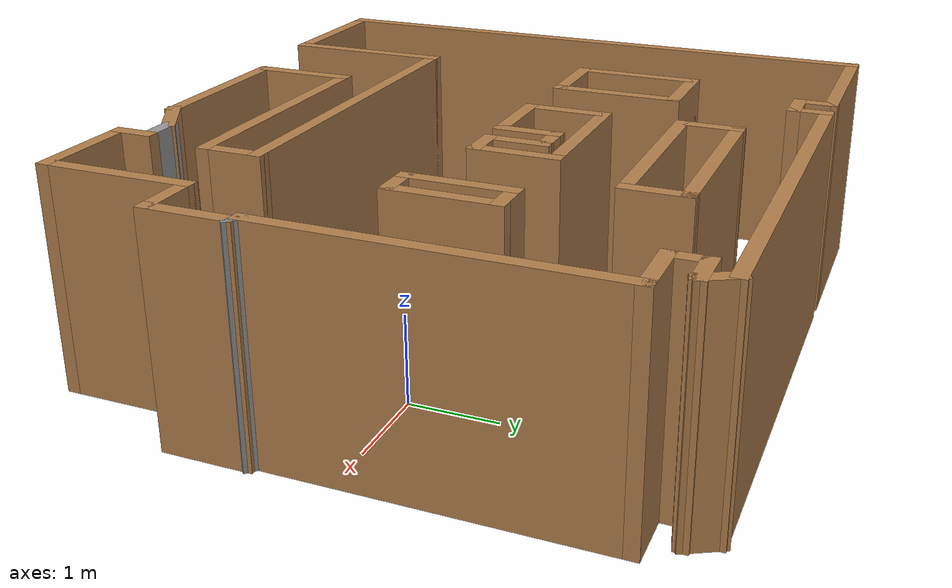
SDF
<?xml version='1.0'?>
<sdf version='1.6'>
  <model name='map_6'>
    <pose frame=''>-2.0173 0.033072 0 0 -0 0</pose>
    <link name='Wall_0'>
      <collision name='Wall_0_Collision'>
        <geometry>
          <box>
            <size>4.75 0.15 2.5</size>
          </box>
        </geometry>
        <pose frame=''>0 0 1.25 0 -0 0</pose>
      </collision>
      <visual name='Wall_0_Visual'>
        <pose frame=''>0 0 1.25 0 -0 0</pose>
        <geometry>
          <box>
            <size>4.75 0.15 2.5</size>
          </box>
        </geometry>
        <material>
          <script>
            <uri>file://media/materials/scripts/gazebo.material</uri>
            <name>Gazebo/Wood</name>
          </script>
          <ambient>1 1 1 1</ambient>
        </material>
        <meta>
          <layer>0</layer>
        </meta>
      </visual>
      <pose frame=''>0.84966 3.41177 0 0 -0 3.14159</pose>
    </link>
    <link name='Wall_10'>
      <collision name='Wall_10_Collision'>
        <geometry>
          <box>
            <size>1.75 0.15 2.5</size>
          </box>
        </geometry>
        <pose frame=''>0 0 1.25 0 -0 0</pose>
      </collision>
      <visual name='Wall_10_Visual'>
        <pose frame=''>0 0 1.25 0 -0 0</pose>
        <geometry>
          <box>
            <size>1.75 0.15 2.5</size>
          </box>
        </geometry>
        <material>
          <script>
            <uri>file://media/materials/scripts/gazebo.material</uri>
            <name>Gazebo/Wood</name>
          </script>
          <ambient>1 1 1 1</ambient>
        </material>
        <meta>
          <layer>0</layer>
        </meta>
      </visual>
      <pose frame=''>-2.85034 -3.43823 0 0 -0 0</pose>
    </link>
    <link name='Wall_11'>
      <collision name='Wall_11_Collision'>
        <geometry>
          <box>
            <size>2 0.15 2.5</size>
          </box>
        </geometry>
        <pose frame=''>0 0 1.25 0 -0 0</pose>
      </collision>
      <visual name='Wall_11_Visual'>
        <pose frame=''>0 0 1.25 0 -0 0</pose>
        <geometry>
          <box>
            <size>2 0.15 2.5</size>
          </box>
        </geometry>
        <material>
          <script>
            <uri>file://media/materials/scripts/gazebo.material</uri>
            <name>Gazebo/Wood</name>
          </script>
          <ambient>1 1 1 1</ambient>
        </material>
        <meta>
          <layer>0</layer>
        </meta>
      </visual>
      <pose frame=''>-2.05034 -2.51323 0 0 -0 1.5708</pose>
    </link>
    <link name='Wall_12'>
      <collision name='Wall_12_Collision'>
        <geometry>
          <box>
            <size>4.25 0.15 2.5</size>
          </box>
        </geometry>
        <pose frame=''>0 0 1.25 0 -0 0</pose>
      </collision>
      <visual name='Wall_12_Visual'>
        <pose frame=''>0 0 1.25 0 -0 0</pose>
        <geometry>
          <box>
            <size>4.25 0.15 2.5</size>
          </box>
        </geometry>
        <material>
          <script>
            <uri>file://media/materials/scripts/gazebo.material</uri>
            <name>Gazebo/Wood</name>
          </script>
          <ambient>1 1 1 1</ambient>
        </material>
        <meta>
          <layer>0</layer>
        </meta>
      </visual>
      <pose frame=''>-0.00034 -1.58823 0 0 -0 0</pose>
    </link>
    <link name='Wall_13'>
      <collision name='Wall_13_Collision'>
        <geometry>
          <box>
            <size>0.75 0.15 2.5</size>
          </box>
        </geometry>
        <pose frame=''>0 0 1.25 0 -0 0</pose>
      </collision>
      <visual name='Wall_13_Visual'>
        <pose frame=''>0 0 1.25 0 -0 0</pose>
        <geometry>
          <box>
            <size>0.75 0.15 2.5</size>
          </box>
        </geometry>
        <material>
          <script>
            <uri>file://media/materials/scripts/gazebo.material</uri>
            <name>Gazebo/Wood</name>
          </script>
          <ambient>1 1 1 1</ambient>
        </material>
        <meta>
          <layer>0</layer>
        </meta>
      </visual>
      <pose frame=''>2.04966 -1.88823 0 0 -0 -1.5708</pose>
    </link>
    <link name='Wall_14'>
      <collision name='Wall_14_Collision'>
        <geometry>
          <box>
            <size>3 0.15 2.5</size>
          </box>
        </geometry>
        <pose frame=''>0 0 1.25 0 -0 0</pose>
      </collision>
      <visual name='Wall_14_Visual'>
        <pose frame=''>0 0 1.25 0 -0 0</pose>
        <geometry>
          <box>
            <size>3 0.15 2.5</size>
          </box>
        </geometry>
        <material>
          <script>
            <uri>file://media/materials/scripts/gazebo.material</uri>
            <name>Gazebo/Wood</name>
          </script>
          <ambient>1 1 1 1</ambient>
        </material>
        <meta>
          <layer>0</layer>
        </meta>
      </visual>
      <pose frame=''>0.62466 -2.18823 0 0 -0 3.14159</pose>
    </link>
    <link name='Wall_15'>
      <collision name='Wall_15_Collision'>
        <geometry>
          <box>
            <size>1.25 0.15 2.5</size>
          </box>
        </geometry>
        <pose frame=''>0 0 1.25 0 -0 0</pose>
      </collision>
      <visual name='Wall_15_Visual'>
        <pose frame=''>0 0 1.25 0 -0 0</pose>
        <geometry>
          <box>
            <size>1.25 0.15 2.5</size>
          </box>
        </geometry>
        <material>
          <script>
            <uri>file://media/materials/scripts/gazebo.material</uri>
            <name>Gazebo/Wood</name>
          </script>
          <ambient>1 1 1 1</ambient>
        </material>
        <meta>
          <layer>0</layer>
        </meta>
      </visual>
      <pose frame=''>-0.80034 -2.73823 0 0 -0 -1.5708</pose>
    </link>
    <link name='Wall_16'>
      <collision name='Wall_16_Collision'>
        <geometry>
          <box>
            <size>2 0.15 2.5</size>
          </box>
        </geometry>
        <pose frame=''>0 0 1.25 0 -0 0</pose>
      </collision>
      <visual name='Wall_16_Visual'>
        <pose frame=''>0 0 1.25 0 -0 0</pose>
        <geometry>
          <box>
            <size>2 0.15 2.5</size>
          </box>
        </geometry>
        <material>
          <script>
            <uri>file://media/materials/scripts/gazebo.material</uri>
            <name>Gazebo/Wood</name>
          </script>
          <ambient>1 1 1 1</ambient>
        </material>
        <meta>
          <layer>0</layer>
        </meta>
      </visual>
      <pose frame=''>0.12466 -3.28823 0 0 -0 0</pose>
    </link>
    <link name='Wall_17'>
      <collision name='Wall_17_Collision'>
        <geometry>
          <box>
            <size>0.75 0.15 2.5</size>
          </box>
        </geometry>
        <pose frame=''>0 0 1.25 0 -0 0</pose>
      </collision>
      <visual name='Wall_17_Visual'>
        <pose frame=''>0 0 1.25 0 -0 0</pose>
        <geometry>
          <box>
            <size>0.75 0.15 2.5</size>
          </box>
        </geometry>
        <material>
          <script>
            <uri>file://media/materials/scripts/gazebo.material</uri>
            <name>Gazebo/Wood</name>
          </script>
          <ambient>1 1 1 1</ambient>
        </material>
        <meta>
          <layer>0</layer>
        </meta>
      </visual>
      <pose frame=''>1.30947 -3.13823 0 0 -0 0.523599</pose>
    </link>
    <link name='Wall_18'>
      <collision name='Wall_18_Collision'>
        <geometry>
          <box>
            <size>0.5 0.15 2.5</size>
          </box>
        </geometry>
        <pose frame=''>0 0 1.25 0 -0 0</pose>
      </collision>
      <visual name='Wall_18_Visual'>
        <pose frame=''>0 0 1.25 0 -0 0</pose>
        <geometry>
          <box>
            <size>0.5 0.15 2.5</size>
          </box>
        </geometry>
        <material>
          <script>
            <uri>file://media/materials/scripts/gazebo.material</uri>
            <name>Gazebo/Grey</name>
          </script>
          <ambient>1 1 1 1</ambient>
        </material>
        <meta>
          <layer>0</layer>
        </meta>
      </visual>
      <pose frame=''>1.74428 -2.98823 0 0 -0 0</pose>
    </link>
    <link name='Wall_19'>
      <collision name='Wall_19_Collision'>
        <geometry>
          <box>
            <size>0.5 0.15 2.5</size>
          </box>
        </geometry>
        <pose frame=''>0 0 1.25 0 -0 0</pose>
      </collision>
      <visual name='Wall_19_Visual'>
        <pose frame=''>0 0 1.25 0 -0 0</pose>
        <geometry>
          <box>
            <size>0.5 0.15 2.5</size>
          </box>
        </geometry>
        <material>
          <script>
            <uri>file://media/materials/scripts/gazebo.material</uri>
            <name>Gazebo/Wood</name>
          </script>
          <ambient>1 1 1 1</ambient>
        </material>
        <meta>
          <layer>0</layer>
        </meta>
      </visual>
      <pose frame=''>1.91928 -3.16323 0 0 -0 -1.5708</pose>
    </link>
    <link name='Wall_20'>
      <collision name='Wall_20_Collision'>
        <geometry>
          <box>
            <size>1.25 0.15 2.5</size>
          </box>
        </geometry>
        <pose frame=''>0 0 1.25 0 -0 0</pose>
      </collision>
      <visual name='Wall_20_Visual'>
        <pose frame=''>0 0 1.25 0 -0 0</pose>
        <geometry>
          <box>
            <size>1.25 0.15 2.5</size>
          </box>
        </geometry>
        <material>
          <script>
            <uri>file://media/materials/scripts/gazebo.material</uri>
            <name>Gazebo/Wood</name>
          </script>
          <ambient>1 1 1 1</ambient>
        </material>
        <meta>
          <layer>0</layer>
        </meta>
      </visual>
      <pose frame=''>2.46928 -3.33823 0 0 -0 0</pose>
    </link>
    <link name='Wall_21'>
      <collision name='Wall_21_Collision'>
        <geometry>
          <box>
            <size>1.75 0.15 2.5</size>
          </box>
        </geometry>
        <pose frame=''>0 0 1.25 0 -0 0</pose>
      </collision>
      <visual name='Wall_21_Visual'>
        <pose frame=''>0 0 1.25 0 -0 0</pose>
        <geometry>
          <box>
            <size>1.75 0.15 2.5</size>
          </box>
        </geometry>
        <material>
          <script>
            <uri>file://media/materials/scripts/gazebo.material</uri>
            <name>Gazebo/Wood</name>
          </script>
          <ambient>1 1 1 1</ambient>
        </material>
        <meta>
          <layer>0</layer>
        </meta>
      </visual>
      <pose frame=''>3.01927 -2.53823 0 0 -0 1.5708</pose>
    </link>
    <link name='Wall_22'>
      <collision name='Wall_22_Collision'>
        <geometry>
          <box>
            <size>0.75 0.15 2.5</size>
          </box>
        </geometry>
        <pose frame=''>0 0 1.25 0 -0 0</pose>
      </collision>
      <visual name='Wall_22_Visual'>
        <pose frame=''>0 0 1.25 0 -0 0</pose>
        <geometry>
          <box>
            <size>0.75 0.15 2.5</size>
          </box>
        </geometry>
        <material>
          <script>
            <uri>file://media/materials/scripts/gazebo.material</uri>
            <name>Gazebo/Wood</name>
          </script>
          <ambient>1 1 1 1</ambient>
        </material>
        <meta>
          <layer>0</layer>
        </meta>
      </visual>
      <pose frame=''>3.31928 -1.73823 0 0 -0 0</pose>
    </link>
    <link name='Wall_23'>
      <collision name='Wall_23_Collision'>
        <geometry>
          <box>
            <size>1 0.15 2.5</size>
          </box>
        </geometry>
        <pose frame=''>0 0 1.25 0 -0 0</pose>
      </collision>
      <visual name='Wall_23_Visual'>
        <pose frame=''>0 0 1.25 0 -0 0</pose>
        <geometry>
          <box>
            <size>1 0.15 2.5</size>
          </box>
        </geometry>
        <material>
          <script>
            <uri>file://media/materials/scripts/gazebo.material</uri>
            <name>Gazebo/Wood</name>
          </script>
          <ambient>1 1 1 1</ambient>
        </material>
        <meta>
          <layer>0</layer>
        </meta>
      </visual>
      <pose frame=''>3.61928 -1.31323 0 0 -0 1.5708</pose>
    </link>
    <link name='Wall_24'>
      <collision name='Wall_24_Collision'>
        <geometry>
          <box>
            <size>0.25 0.15 2.5</size>
          </box>
        </geometry>
        <pose frame=''>0 0 1.25 0 -0 0</pose>
      </collision>
      <visual name='Wall_24_Visual'>
        <pose frame=''>0 0 1.25 0 -0 0</pose>
        <geometry>
          <box>
            <size>0.25 0.15 2.5</size>
          </box>
        </geometry>
        <material>
          <script>
            <uri>file://media/materials/scripts/gazebo.material</uri>
            <name>Gazebo/Grey</name>
          </script>
          <ambient>1 1 1 1</ambient>
        </material>
        <meta>
          <layer>0</layer>
        </meta>
      </visual>
      <pose frame=''>3.58392 -0.852877 0 0 -0 2.35619</pose>
    </link>
    <link name='Wall_25'>
      <collision name='Wall_25_Collision'>
        <geometry>
          <box>
            <size>3.75 0.15 2.5</size>
          </box>
        </geometry>
        <pose frame=''>0 0 1.25 0 -0 0</pose>
      </collision>
      <visual name='Wall_25_Visual'>
        <pose frame=''>0 0 1.25 0 -0 0</pose>
        <geometry>
          <box>
            <size>3.75 0.15 2.5</size>
          </box>
        </geometry>
        <material>
          <script>
            <uri>file://media/materials/scripts/gazebo.material</uri>
            <name>Gazebo/Wood</name>
          </script>
          <ambient>1 1 1 1</ambient>
        </material>
        <meta>
          <layer>0</layer>
        </meta>
      </visual>
      <pose frame=''>3.54856 0.982478 0 0 -0 1.5708</pose>
    </link>
    <link name='Wall_26'>
      <collision name='Wall_26_Collision'>
        <geometry>
          <box>
            <size>0.75 0.15 2.5</size>
          </box>
        </geometry>
        <pose frame=''>0 0 1.25 0 -0 0</pose>
      </collision>
      <visual name='Wall_26_Visual'>
        <pose frame=''>0 0 1.25 0 -0 0</pose>
        <geometry>
          <box>
            <size>0.75 0.15 2.5</size>
          </box>
        </geometry>
        <material>
          <script>
            <uri>file://media/materials/scripts/gazebo.material</uri>
            <name>Gazebo/Wood</name>
          </script>
          <ambient>1 1 1 1</ambient>
        </material>
        <meta>
          <layer>0</layer>
        </meta>
      </visual>
      <pose frame=''>3.24856 2.78248 0 0 -0 3.14159</pose>
    </link>
    <link name='Wall_27'>
      <collision name='Wall_27_Collision'>
        <geometry>
          <box>
            <size>0.5 0.15 2.5</size>
          </box>
        </geometry>
        <pose frame=''>0 0 1.25 0 -0 0</pose>
      </collision>
      <visual name='Wall_27_Visual'>
        <pose frame=''>0 0 1.25 0 -0 0</pose>
        <geometry>
          <box>
            <size>0.5 0.15 2.5</size>
          </box>
        </geometry>
        <material>
          <script>
            <uri>file://media/materials/scripts/gazebo.material</uri>
            <name>Gazebo/Wood</name>
          </script>
          <ambient>1 1 1 1</ambient>
        </material>
        <meta>
          <layer>0</layer>
        </meta>
      </visual>
      <pose frame=''>2.94856 2.95748 0 0 -0 1.5708</pose>
    </link>
    <link name='Wall_28'>
      <collision name='Wall_28_Collision'>
        <geometry>
          <box>
            <size>0.5 0.15 2.5</size>
          </box>
        </geometry>
        <pose frame=''>0 0 1.25 0 -0 0</pose>
      </collision>
      <visual name='Wall_28_Visual'>
        <pose frame=''>0 0 1.25 0 -0 0</pose>
        <geometry>
          <box>
            <size>0.5 0.15 2.5</size>
          </box>
        </geometry>
        <material>
          <script>
            <uri>file://media/materials/scripts/gazebo.material</uri>
            <name>Gazebo/Wood</name>
          </script>
          <ambient>1 1 1 1</ambient>
        </material>
        <meta>
          <layer>0</layer>
        </meta>
      </visual>
      <pose frame=''>3.12356 3.13248 0 0 -0 0</pose>
    </link>
    <link name='Wall_29'>
      <collision name='Wall_29_Collision'>
        <geometry>
          <box>
            <size>0.466504 0.15 2.5</size>
          </box>
        </geometry>
        <pose frame=''>0 0 1.25 0 -0 0</pose>
      </collision>
      <visual name='Wall_29_Visual'>
        <pose frame=''>0 0 1.25 0 -0 0</pose>
        <geometry>
          <box>
            <size>0.466504 0.15 2.5</size>
          </box>
        </geometry>
        <material>
          <script>
            <uri>file://media/materials/scripts/gazebo.material</uri>
            <name>Gazebo/Wood</name>
          </script>
          <ambient>1 1 1 1</ambient>
        </material>
        <meta>
          <layer>0</layer>
        </meta>
      </visual>
      <pose frame=''>3.22411 3.27212 0 0 -0 2.06061</pose>
    </link>
    <link name='Wall_31'>
      <collision name='Wall_31_Collision'>
        <geometry>
          <box>
            <size>1 0.15 2.5</size>
          </box>
        </geometry>
        <pose frame=''>0 0 1.25 0 -0 0</pose>
      </collision>
      <visual name='Wall_31_Visual'>
        <pose frame=''>0 0 1.25 0 -0 0</pose>
        <geometry>
          <box>
            <size>1 0.15 2.5</size>
          </box>
        </geometry>
        <material>
          <script>
            <uri>file://media/materials/scripts/gazebo.material</uri>
            <name>Gazebo/Wood</name>
          </script>
          <ambient>1 1 1 1</ambient>
        </material>
        <meta>
          <layer>0</layer>
        </meta>
      </visual>
      <pose frame=''>-1.77472 1.73565 0 0 -0 0</pose>
    </link>
    <link name='Wall_32'>
      <collision name='Wall_32_Collision'>
        <geometry>
          <box>
            <size>1.5 0.15 2.5</size>
          </box>
        </geometry>
        <pose frame=''>0 0 1.25 0 -0 0</pose>
      </collision>
      <visual name='Wall_32_Visual'>
        <pose frame=''>0 0 1.25 0 -0 0</pose>
        <geometry>
          <box>
            <size>1.5 0.15 2.5</size>
          </box>
        </geometry>
        <material>
          <script>
            <uri>file://media/materials/scripts/gazebo.material</uri>
            <name>Gazebo/Wood</name>
          </script>
          <ambient>1 1 1 1</ambient>
        </material>
        <meta>
          <layer>0</layer>
        </meta>
      </visual>
      <pose frame=''>-1.34971 1.06065 0 0 -0 -1.5708</pose>
    </link>
    <link name='Wall_33'>
      <collision name='Wall_33_Collision'>
        <geometry>
          <box>
            <size>1 0.15 2.5</size>
          </box>
        </geometry>
        <pose frame=''>0 0 1.25 0 -0 0</pose>
      </collision>
      <visual name='Wall_33_Visual'>
        <pose frame=''>0 0 1.25 0 -0 0</pose>
        <geometry>
          <box>
            <size>1 0.15 2.5</size>
          </box>
        </geometry>
        <material>
          <script>
            <uri>file://media/materials/scripts/gazebo.material</uri>
            <name>Gazebo/Wood</name>
          </script>
          <ambient>1 1 1 1</ambient>
        </material>
        <meta>
          <layer>0</layer>
        </meta>
      </visual>
      <pose frame=''>-1.77472 0.38565 0 0 -0 3.14159</pose>
    </link>
    <link name='Wall_34'>
      <collision name='Wall_34_Collision'>
        <geometry>
          <box>
            <size>1.5 0.15 2.5</size>
          </box>
        </geometry>
        <pose frame=''>0 0 1.25 0 -0 0</pose>
      </collision>
      <visual name='Wall_34_Visual'>
        <pose frame=''>0 0 1.25 0 -0 0</pose>
        <geometry>
          <box>
            <size>1.5 0.15 2.5</size>
          </box>
        </geometry>
        <material>
          <script>
            <uri>file://media/materials/scripts/gazebo.material</uri>
            <name>Gazebo/Wood</name>
          </script>
          <ambient>1 1 1 1</ambient>
        </material>
        <meta>
          <layer>0</layer>
        </meta>
      </visual>
      <pose frame=''>-2.19971 1.06065 0 0 -0 1.5708</pose>
    </link>
    <link name='Wall_37'>
      <collision name='Wall_37_Collision'>
        <geometry>
          <box>
            <size>2.25 0.15 2.5</size>
          </box>
        </geometry>
        <pose frame=''>0 0 1.25 0 -0 0</pose>
      </collision>
      <visual name='Wall_37_Visual'>
        <pose frame=''>0 0 1.25 0 -0 0</pose>
        <geometry>
          <box>
            <size>2.25 0.15 2.5</size>
          </box>
        </geometry>
        <material>
          <script>
            <uri>file://media/materials/scripts/gazebo.material</uri>
            <name>Gazebo/Wood</name>
          </script>
          <ambient>1 1 1 1</ambient>
        </material>
        <meta>
          <layer>0</layer>
        </meta>
      </visual>
      <pose frame=''>0.538456 2.03297 0 0 -0 0</pose>
    </link>
    <link name='Wall_39'>
      <collision name='Wall_39_Collision'>
        <geometry>
          <box>
            <size>0.75 0.15 2.5</size>
          </box>
        </geometry>
        <pose frame=''>0 0 1.25 0 -0 0</pose>
      </collision>
      <visual name='Wall_39_Visual'>
        <pose frame=''>0 0 1.25 0 -0 0</pose>
        <geometry>
          <box>
            <size>0.75 0.15 2.5</size>
          </box>
        </geometry>
        <material>
          <script>
            <uri>file://media/materials/scripts/gazebo.material</uri>
            <name>Gazebo/Wood</name>
          </script>
          <ambient>1 1 1 1</ambient>
        </material>
        <meta>
          <layer>0</layer>
        </meta>
      </visual>
      <pose frame=''>-0.511544 2.33297 0 0 -0 1.5708</pose>
    </link>
    <link name='Wall_4'>
      <collision name='Wall_4_Collision'>
        <geometry>
          <box>
            <size>0.5 0.15 2.5</size>
          </box>
        </geometry>
        <pose frame=''>0 0 1.25 0 -0 0</pose>
      </collision>
      <visual name='Wall_4_Visual'>
        <pose frame=''>0 0 1.25 0 -0 0</pose>
        <geometry>
          <box>
            <size>0.5 0.15 2.5</size>
          </box>
        </geometry>
        <material>
          <script>
            <uri>file://media/materials/scripts/gazebo.material</uri>
            <name>Gazebo/Wood</name>
          </script>
          <ambient>1 1 1 1</ambient>
        </material>
        <meta>
          <layer>0</layer>
        </meta>
      </visual>
      <pose frame=''>-1.45034 3.23677 0 0 -0 -1.5708</pose>
    </link>
    <link name='Wall_40'>
      <collision name='Wall_40_Collision'>
        <geometry>
          <box>
            <size>2.25 0.15 2.5</size>
          </box>
        </geometry>
        <pose frame=''>0 0 1.25 0 -0 0</pose>
      </collision>
      <visual name='Wall_40_Visual'>
        <pose frame=''>0 0 1.25 0 -0 0</pose>
        <geometry>
          <box>
            <size>2.25 0.15 2.5</size>
          </box>
        </geometry>
        <material>
          <script>
            <uri>file://media/materials/scripts/gazebo.material</uri>
            <name>Gazebo/Wood</name>
          </script>
          <ambient>1 1 1 1</ambient>
        </material>
        <meta>
          <layer>0</layer>
        </meta>
      </visual>
      <pose frame=''>0.538456 2.63297 0 0 -0 0</pose>
    </link>
    <link name='Wall_41'>
      <collision name='Wall_41_Collision'>
        <geometry>
          <box>
            <size>0.75 0.15 2.5</size>
          </box>
        </geometry>
        <pose frame=''>0 0 1.25 0 -0 0</pose>
      </collision>
      <visual name='Wall_41_Visual'>
        <pose frame=''>0 0 1.25 0 -0 0</pose>
        <geometry>
          <box>
            <size>0.75 0.15 2.5</size>
          </box>
        </geometry>
        <material>
          <script>
            <uri>file://media/materials/scripts/gazebo.material</uri>
            <name>Gazebo/Wood</name>
          </script>
          <ambient>1 1 1 1</ambient>
        </material>
        <meta>
          <layer>0</layer>
        </meta>
      </visual>
      <pose frame=''>1.58846 2.33297 0 0 -0 -1.5708</pose>
    </link>
    <link name='Wall_44'>
      <collision name='Wall_44_Collision'>
        <geometry>
          <box>
            <size>1 0.15 2.5</size>
          </box>
        </geometry>
        <pose frame=''>0 0 1.25 0 -0 0</pose>
      </collision>
      <visual name='Wall_44_Visual'>
        <pose frame=''>0 0 1.25 0 -0 0</pose>
        <geometry>
          <box>
            <size>1 0.15 2.5</size>
          </box>
        </geometry>
        <material>
          <script>
            <uri>file://media/materials/scripts/gazebo.material</uri>
            <name>Gazebo/Wood</name>
          </script>
          <ambient>1 1 1 1</ambient>
        </material>
        <meta>
          <layer>0</layer>
        </meta>
      </visual>
      <pose frame=''>-0.496335 0.747926 0 0 -0 -1.5708</pose>
    </link>
    <link name='Wall_45'>
      <collision name='Wall_45_Collision'>
        <geometry>
          <box>
            <size>1 0.15 2.5</size>
          </box>
        </geometry>
        <pose frame=''>0 0 1.25 0 -0 0</pose>
      </collision>
      <visual name='Wall_45_Visual'>
        <pose frame=''>0 0 1.25 0 -0 0</pose>
        <geometry>
          <box>
            <size>1 0.15 2.5</size>
          </box>
        </geometry>
        <material>
          <script>
            <uri>file://media/materials/scripts/gazebo.material</uri>
            <name>Gazebo/Wood</name>
          </script>
          <ambient>1 1 1 1</ambient>
        </material>
        <meta>
          <layer>0</layer>
        </meta>
      </visual>
      <pose frame=''>-0.071335 0.322926 0 0 -0 0</pose>
    </link>
    <link name='Wall_46'>
      <collision name='Wall_46_Collision'>
        <geometry>
          <box>
            <size>0.75 0.15 2.5</size>
          </box>
        </geometry>
        <pose frame=''>0 0 1.25 0 -0 0</pose>
      </collision>
      <visual name='Wall_46_Visual'>
        <pose frame=''>0 0 1.25 0 -0 0</pose>
        <geometry>
          <box>
            <size>0.75 0.15 2.5</size>
          </box>
        </geometry>
        <material>
          <script>
            <uri>file://media/materials/scripts/gazebo.material</uri>
            <name>Gazebo/Wood</name>
          </script>
          <ambient>1 1 1 1</ambient>
        </material>
        <meta>
          <layer>0</layer>
        </meta>
      </visual>
      <pose frame=''>0.353665 0.622926 0 0 -0 1.5708</pose>
    </link>
    <link name='Wall_47'>
      <collision name='Wall_47_Collision'>
        <geometry>
          <box>
            <size>0.5 0.15 2.5</size>
          </box>
        </geometry>
        <pose frame=''>0 0 1.25 0 -0 0</pose>
      </collision>
      <visual name='Wall_47_Visual'>
        <pose frame=''>0 0 1.25 0 -0 0</pose>
        <geometry>
          <box>
            <size>0.5 0.15 2.5</size>
          </box>
        </geometry>
        <material>
          <script>
            <uri>file://media/materials/scripts/gazebo.material</uri>
            <name>Gazebo/Wood</name>
          </script>
          <ambient>1 1 1 1</ambient>
        </material>
        <meta>
          <layer>0</layer>
        </meta>
      </visual>
      <pose frame=''>0.528665 0.922926 0 0 -0 0</pose>
    </link>
    <link name='Wall_48'>
      <collision name='Wall_48_Collision'>
        <geometry>
          <box>
            <size>0.75 0.15 2.5</size>
          </box>
        </geometry>
        <pose frame=''>0 0 1.25 0 -0 0</pose>
      </collision>
      <visual name='Wall_48_Visual'>
        <pose frame=''>0 0 1.25 0 -0 0</pose>
        <geometry>
          <box>
            <size>0.75 0.15 2.5</size>
          </box>
        </geometry>
        <material>
          <script>
            <uri>file://media/materials/scripts/gazebo.material</uri>
            <name>Gazebo/Wood</name>
          </script>
          <ambient>1 1 1 1</ambient>
        </material>
        <meta>
          <layer>0</layer>
        </meta>
      </visual>
      <pose frame=''>0.703665 0.622926 0 0 -0 -1.5708</pose>
    </link>
    <link name='Wall_49'>
      <collision name='Wall_49_Collision'>
        <geometry>
          <box>
            <size>0.5 0.15 2.5</size>
          </box>
        </geometry>
        <pose frame=''>0 0 1.25 0 -0 0</pose>
      </collision>
      <visual name='Wall_49_Visual'>
        <pose frame=''>0 0 1.25 0 -0 0</pose>
        <geometry>
          <box>
            <size>0.5 0.15 2.5</size>
          </box>
        </geometry>
        <material>
          <script>
            <uri>file://media/materials/scripts/gazebo.material</uri>
            <name>Gazebo/Wood</name>
          </script>
          <ambient>1 1 1 1</ambient>
        </material>
        <meta>
          <layer>0</layer>
        </meta>
      </visual>
      <pose frame=''>0.878665 0.322926 0 0 -0 0</pose>
    </link>
    <link name='Wall_5'>
      <collision name='Wall_5_Collision'>
        <geometry>
          <box>
            <size>0.5 0.15 2.5</size>
          </box>
        </geometry>
        <pose frame=''>0 0 1.25 0 -0 0</pose>
      </collision>
      <visual name='Wall_5_Visual'>
        <pose frame=''>0 0 1.25 0 -0 0</pose>
        <geometry>
          <box>
            <size>0.5 0.15 2.5</size>
          </box>
        </geometry>
        <material>
          <script>
            <uri>file://media/materials/scripts/gazebo.material</uri>
            <name>Gazebo/Wood</name>
          </script>
          <ambient>1 1 1 1</ambient>
        </material>
        <meta>
          <layer>0</layer>
        </meta>
      </visual>
      <pose frame=''>-1.62534 3.06177 0 0 -0 3.14159</pose>
    </link>
    <link name='Wall_50'>
      <collision name='Wall_50_Collision'>
        <geometry>
          <box>
            <size>1 0.15 2.5</size>
          </box>
        </geometry>
        <pose frame=''>0 0 1.25 0 -0 0</pose>
      </collision>
      <visual name='Wall_50_Visual'>
        <pose frame=''>0 0 1.25 0 -0 0</pose>
        <geometry>
          <box>
            <size>1 0.15 2.5</size>
          </box>
        </geometry>
        <material>
          <script>
            <uri>file://media/materials/scripts/gazebo.material</uri>
            <name>Gazebo/Wood</name>
          </script>
          <ambient>1 1 1 1</ambient>
        </material>
        <meta>
          <layer>0</layer>
        </meta>
      </visual>
      <pose frame=''>1.05367 0.747926 0 0 -0 1.5708</pose>
    </link>
    <link name='Wall_51'>
      <collision name='Wall_51_Collision'>
        <geometry>
          <box>
            <size>1.7 0.15 2.5</size>
          </box>
        </geometry>
        <pose frame=''>0 0 1.25 0 -0 0</pose>
      </collision>
      <visual name='Wall_51_Visual'>
        <pose frame=''>0 0 1.25 0 -0 0</pose>
        <geometry>
          <box>
            <size>1.7 0.15 2.5</size>
          </box>
        </geometry>
        <material>
          <script>
            <uri>file://media/materials/scripts/gazebo.material</uri>
            <name>Gazebo/Wood</name>
          </script>
          <ambient>1 1 1 1</ambient>
        </material>
        <meta>
          <layer>0</layer>
        </meta>
      </visual>
      <pose frame=''>0.278665 1.17293 0 0 -0 3.14159</pose>
    </link>
    <link name='Wall_54'>
      <collision name='Wall_54_Collision'>
        <geometry>
          <box>
            <size>1.25 0.15 2.5</size>
          </box>
        </geometry>
        <pose frame=''>0 0 1.25 0 -0 0</pose>
      </collision>
      <visual name='Wall_54_Visual'>
        <pose frame=''>0 0 1.25 0 -0 0</pose>
        <geometry>
          <box>
            <size>1.25 0.15 2.5</size>
          </box>
        </geometry>
        <material>
          <script>
            <uri>file://media/materials/scripts/gazebo.material</uri>
            <name>Gazebo/Wood</name>
          </script>
          <ambient>1 1 1 1</ambient>
        </material>
        <meta>
          <layer>0</layer>
        </meta>
      </visual>
      <pose frame=''>2.05873 0.5773 0 0 -0 -1.5708</pose>
    </link>
    <link name='Wall_55'>
      <collision name='Wall_55_Collision'>
        <geometry>
          <box>
            <size>0.5 0.15 2.5</size>
          </box>
        </geometry>
        <pose frame=''>0 0 1.25 0 -0 0</pose>
      </collision>
      <visual name='Wall_55_Visual'>
        <pose frame=''>0 0 1.25 0 -0 0</pose>
        <geometry>
          <box>
            <size>0.5 0.15 2.5</size>
          </box>
        </geometry>
        <material>
          <script>
            <uri>file://media/materials/scripts/gazebo.material</uri>
            <name>Gazebo/Wood</name>
          </script>
          <ambient>1 1 1 1</ambient>
        </material>
        <meta>
          <layer>0</layer>
        </meta>
      </visual>
      <pose frame=''>2.23373 0.0273 0 0 -0 0</pose>
    </link>
    <link name='Wall_56'>
      <collision name='Wall_56_Collision'>
        <geometry>
          <box>
            <size>1.25 0.15 2.5</size>
          </box>
        </geometry>
        <pose frame=''>0 0 1.25 0 -0 0</pose>
      </collision>
      <visual name='Wall_56_Visual'>
        <pose frame=''>0 0 1.25 0 -0 0</pose>
        <geometry>
          <box>
            <size>1.25 0.15 2.5</size>
          </box>
        </geometry>
        <material>
          <script>
            <uri>file://media/materials/scripts/gazebo.material</uri>
            <name>Gazebo/Wood</name>
          </script>
          <ambient>1 1 1 1</ambient>
        </material>
        <meta>
          <layer>0</layer>
        </meta>
      </visual>
      <pose frame=''>2.40874 0.5773 0 0 -0 1.5708</pose>
    </link>
    <link name='Wall_57'>
      <collision name='Wall_57_Collision'>
        <geometry>
          <box>
            <size>0.5 0.15 2.5</size>
          </box>
        </geometry>
        <pose frame=''>0 0 1.25 0 -0 0</pose>
      </collision>
      <visual name='Wall_57_Visual'>
        <pose frame=''>0 0 1.25 0 -0 0</pose>
        <geometry>
          <box>
            <size>0.5 0.15 2.5</size>
          </box>
        </geometry>
        <material>
          <script>
            <uri>file://media/materials/scripts/gazebo.material</uri>
            <name>Gazebo/Wood</name>
          </script>
          <ambient>1 1 1 1</ambient>
        </material>
        <meta>
          <layer>0</layer>
        </meta>
      </visual>
      <pose frame=''>2.23373 1.1273 0 0 -0 3.14159</pose>
    </link>
    <link name='Wall_6'>
      <collision name='Wall_6_Collision'>
        <geometry>
          <box>
            <size>0.5 0.15 2.5</size>
          </box>
        </geometry>
        <pose frame=''>0 0 1.25 0 -0 0</pose>
      </collision>
      <visual name='Wall_6_Visual'>
        <pose frame=''>0 0 1.25 0 -0 0</pose>
        <geometry>
          <box>
            <size>0.5 0.15 2.5</size>
          </box>
        </geometry>
        <material>
          <script>
            <uri>file://media/materials/scripts/gazebo.material</uri>
            <name>Gazebo/Wood</name>
          </script>
          <ambient>1 1 1 1</ambient>
        </material>
        <meta>
          <layer>0</layer>
        </meta>
      </visual>
      <pose frame=''>-1.80034 3.23677 0 0 -0 1.5708</pose>
    </link>
    <link name='Wall_7'>
      <collision name='Wall_7_Collision'>
        <geometry>
          <box>
            <size>2 0.15 2.5</size>
          </box>
        </geometry>
        <pose frame=''>0 0 1.25 0 -0 0</pose>
      </collision>
      <visual name='Wall_7_Visual'>
        <pose frame=''>0 0 1.25 0 -0 0</pose>
        <geometry>
          <box>
            <size>2 0.15 2.5</size>
          </box>
        </geometry>
        <material>
          <script>
            <uri>file://media/materials/scripts/gazebo.material</uri>
            <name>Gazebo/Wood</name>
          </script>
          <ambient>1 1 1 1</ambient>
        </material>
        <meta>
          <layer>0</layer>
        </meta>
      </visual>
      <pose frame=''>-2.72534 3.41177 0 0 -0 3.14159</pose>
    </link>
    <link name='Wall_9'>
      <collision name='Wall_9_Collision'>
        <geometry>
          <box>
            <size>7 0.15 2.5</size>
          </box>
        </geometry>
        <pose frame=''>0 0 1.25 0 -0 0</pose>
      </collision>
      <visual name='Wall_9_Visual'>
        <pose frame=''>0 0 1.25 0 -0 0</pose>
        <geometry>
          <box>
            <size>7 0.15 2.5</size>
          </box>
        </geometry>
        <material>
          <script>
            <uri>file://media/materials/scripts/gazebo.material</uri>
            <name>Gazebo/Wood</name>
          </script>
          <ambient>1 1 1 1</ambient>
        </material>
        <meta>
          <layer>0</layer>
        </meta>
      </visual>
      <pose frame=''>-3.65034 -0.013233 0 0 -0 -1.5708</pose>
    </link>
    <static>1</static>
  </model>
</sdf>
